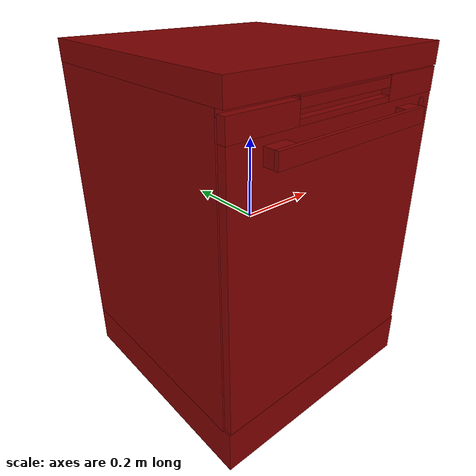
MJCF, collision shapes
<?xml version='1.0' encoding='UTF-8'?>
<mujoco model="model">
  <option timestep="0.002" gravity="0.0 0.0 -9.81"/>
  <compiler angle="radian"/>
  <asset>
    <mesh file="visuals/button_power.obj" name="button_power_vis"/>
    <mesh file="visuals/Body001.obj" name="Body001_vis"/>
    <mesh file="visuals/door.obj" name="door_vis"/>
    <mesh file="visuals/rack0.obj" name="rack0_vis"/>
    <mesh file="visuals/rack1.obj" name="rack1_vis"/>
    <texture file="visuals/T_BC001.png" name="Body001_material" type="2d"/>
    <material name="Body001_material" rgba="1 1 1 1.0" texture="Body001_material" shininess="0.1472135901451111" specular="8"/>
    <texture file="visuals/T_BC001.png" name="door_material" type="2d"/>
    <material name="door_material" rgba="1 1 1 1.0" texture="door_material" shininess="0.3472135901451111" specular="2"/>
    <texture file="visuals/T_BC001.png" name="button_power_material" type="2d"/>
    <material name="button_power_material" rgba="1 1 1 1.0" texture="button_power_material" shininess="0.4472135901451111" specular="0.3103448502657381"/>
    <texture file="visuals/T_BC001.png" name="rack0_material" type="2d"/>
    <material name="rack0_material" rgba="1 1 1 1.0" texture="rack0_material" shininess="0.3472135901451111" specular="5"/>
    <texture file="visuals/T_BC001.png" name="rack1_material" type="2d"/>
    <material name="rack1_material" rgba="1 1 1 1.0" texture="rack1_material" shininess="0.3472135901451111" specular="5"/>
  </asset>
  <default>
    <default class="visual">
      <geom conaffinity="0" contype="0" group="1" type="mesh"/>
    </default>
    <default class="collision">
      <geom group="0" rgba="0.5 0 0 0.5"/>
    </default>
    <default class="spawn">
      <geom group="0" rgba="1 1 1 0.5" contype="0" conaffinity="0"/>
      <site group="0" rgba="1 1 1 0.5"/>
    </default>
    <default class="region">
      <geom group="1" conaffinity="0" contype="0" rgba="0 1 0 0"/>
    </default>
  </default>
  <worldbody>
    <body>
      <body name="object">
        <geom mesh="Body001_vis" type="mesh" solimp="0.998 0.998 0.001" solref="0.001 1" friction="0.95 0.3 0.1" class="visual" material="Body001_material"/>
        <geom class="collision" type="box" pos="0.0001495313481427729 0.017466677352786064 -0.36134880781173706" size="0.2910770773887634 0.2833539545536041 0.052461180835962296" quat="1.0 0.0 0.0 0.0"/>
        <geom class="collision" type="box" pos="-6.28642737865448e-09 0.01746588945388794 0.3891109824180603" size="0.29122665524482727 0.28335314989089966 0.024697640910744667" quat="1.0 0.0 0.0 0.0"/>
        <geom class="collision" type="box" pos="-0.2648942768573761 0.027671895921230316 0.025932788848876953" size="0.026033295318484306 0.2731485366821289 0.34079235792160034" quat="1.0 0.0 0.0 0.0"/>
        <geom class="collision" type="box" pos="0.26625052094459534 0.027664760127663612 0.025932788848876953" size="0.024662407115101814 0.2731557786464691 0.34079235792160034" quat="1.0 0.0 0.0 0.0"/>
        <geom class="collision" type="box" pos="-0.00014079082757234573 0.25822558999061584 0.027698397636413574" size="0.24205000698566437 0.04259497672319412 0.34251588582992554" quat="1.0 0.0 0.0 0.0"/>
        <geom class="collision" type="box" pos="-0.00014079082757234573 0.03440956026315689 -0.29409754276275635" size="0.24205000698566437 0.26475465297698975 0.02071993425488472" quat="1.0 0.0 0.0 0.0"/>
        <geom class="collision" type="box" pos="0.00045153876999393106 0.026828864589333534 0.3574134111404419" size="0.29011669754981995 0.27233532071113586 0.008320099674165249" quat="1.0 0.0 0.0 0.0"/>
        <geom class="collision" type="box" pos="-0.24220186471939087 -0.019005123525857925 -0.07020049542188644" size="0.016158204525709152 0.18635593354701996 0.007848302833735943" quat="1.0 0.0 0.0 0.0"/>
        <geom class="collision" type="box" pos="0.23929882049560547 -0.019005123525857925 -0.07020049542188644" size="0.016158204525709152 0.18635593354701996 0.007848302833735943" quat="1.0 0.0 0.0 0.0"/>
        <geom class="collision" type="box" pos="0.23929882049560547 -0.019005123525857925 0.19328488409519196" size="0.016158204525709152 0.18635593354701996 0.007848302833735943" quat="1.0 0.0 0.0 0.0"/>
        <geom class="collision" type="box" pos="-0.24220186471939087 -0.019005123525857925 0.19328488409519196" size="0.016158204525709152 0.18635593354701996 0.007848302833735943" quat="1.0 0.0 0.0 0.0"/>
        <body name="door">
          <joint axis="1.0 0.0 0.0" pos="-0.000558888481464237 -0.26588406693190336 -0.30744928028434515" limited="true" name="door_joint" range="0.0 0.6035987755982988" type="hinge" damping="1" frictionloss="10" armature="1" stiffness="2"/>
          <geom mesh="door_vis" type="mesh" solimp="0.998 0.998 0.001" solref="0.001 1" friction="0.95 0.3 0.1" class="visual" material="door_material"/>
          <geom class="collision" type="box" pos="0.0003033773973584175 -0.25598931312561035 0.36041367053985596" size="0.1296575516462326 0.009703303687274456 0.001561103155836463" quat="1.0 0.0 0.0 0.0"/>
          <geom class="collision" type="box" pos="-0.20830126106739044 -0.2560849189758301 0.3324427604675293" size="0.07969097793102264 0.009798895567655563 0.022729039192199707" quat="1.0 0.0 0.0 0.0"/>
          <geom class="collision" type="box" pos="0.20913349092006683 -0.2560851275920868 0.3360663652420044" size="0.07947086542844772 0.009799112565815449 0.026352658867836" quat="1.0 0.0 0.0 0.0"/>
          <geom class="collision" type="box" pos="0.0003033773973584175 -0.264178603887558 0.35019779205322266" size="0.1296575516462326 0.0008578085107728839 0.011400402523577213" quat="1.0 0.0 0.0 0.0"/>
          <geom class="collision" type="box" pos="0.0003033773973584175 -0.25598931312561035 0.29594576358795166" size="0.1296575516462326 0.009703303687274456 0.026352658867836" quat="1.0 0.0 0.0 0.0"/>
          <geom class="collision" type="box" pos="0.0003033773973584175 -0.24555207788944244 0.3404597043991089" size="0.1296575516462326 0.001297959010116756 0.02113850601017475" quat="1.0 0.0 0.0 0.0"/>
          <geom class="collision" type="box" pos="0.18475297093391418 -0.2775583267211914 0.2771376371383667" size="0.025461390614509583 0.013577926903963089 0.017236430197954178" quat="1.0 0.0 0.0 0.0"/>
          <geom class="collision" type="box" pos="-0.18563787639141083 -0.2775583267211914 0.2771376371383667" size="0.025461390614509583 0.013577926903963089 0.017236430197954178" quat="1.0 0.0 0.0 0.0"/>
          <geom class="collision" type="box" pos="-0.00017510750330984592 -0.29599279165267944 0.2771376371383667" size="0.2109241485595703 0.004919996950775385 0.017236430197954178" quat="1.0 0.0 0.0 0.0" name="door_handle_main"/>
          <geom class="collision" type="box" pos="-0.000558888481464237 -0.25608503818511963 0.0011709639802575111" size="0.28743332624435425 0.009799028746783733 0.30862024426460266" quat="1.0 0.0 0.0 0.0" name="door_main"/>
          <body name="button_power">
            <joint axis="0.0 1.0 0.0" pos="0.24902299046516418 -0.267831951379776 0.29334667325019836" limited="true" name="button_power_joint" range="0.0 0.003" type="slide" damping="1" frictionloss="1" armature=".01" stiffness="4" springref="-1"/>
            <geom mesh="button_power_vis" type="mesh" solimp="0.998 0.998 0.001" solref="0.001 1" friction="0.95 0.3 0.1" class="visual" material="button_power_material"/>
            <geom class="collision" type="cylinder" pos="0.24904164671897888 -0.26895877718925476 0.29333949089050293" size="0.009062596596777439 0.001358578447252512" quat="0.7071067094802856 0.70710688829422 0.0 0.0"/>
          </body>
        </body>
        <body name="rack0">
          <geom class="region" name="reg_rack0" type="box" pos="-0.0009538978338241577 -0.030650310218334198 0.09350907790940255" size="0.21192884242534638 0.1516560668349266 0.09273941623885185"/>
          <joint axis="0.0 -1.0 0.0" pos="-0.0012442677980288863 -0.030350230634212494 -0.007744709961116314" limited="true" name="rack0_joint" range="0.0 0.182" type="slide" damping="1" frictionloss="1" armature=".01" stiffness="0.05"/>
          <geom mesh="rack0_vis" type="mesh" solimp="0.998 0.998 0.001" solref="0.001 1" friction="0.95 0.3 0.1" class="visual" material="rack0_material"/>
          <geom class="collision" type="box" pos="-0.20387303829193115 -0.03031572699546814 -0.05844490975141525" size="0.028610870242118835 0.1739332675933838 0.002080196049064398" quat="1.0 0.0 0.0 0.0"/>
          <geom class="collision" type="box" pos="-0.000733064254745841 0.14454737305641174 -0.017419179901480675" size="0.22167141735553741 0.0020802852232009172 0.05752143636345863" quat="1.0 0.0 0.0 0.0"/>
          <geom class="collision" type="box" pos="-0.000733064254745841 -0.20494940876960754 -0.017419179901480675" size="0.22167141735553741 0.0025122754741460085 0.05752143636345863" quat="1.0 0.0 0.0 0.0"/>
          <geom class="collision" type="box" pos="0.23039132356643677 -0.031747251749038696 -0.010090993717312813" size="0.0025122377555817366 0.1759839951992035 0.05019324645400047" quat="1.0 0.0 0.0 0.0"/>
          <geom class="collision" type="box" pos="-0.2339985966682434 -0.031747251749038696 -0.010072441771626472" size="0.0019362475723028183 0.1759839951992035 0.05017470195889473" quat="1.0 0.0 0.0 0.0"/>
          <geom class="collision" type="box" pos="0.20648029446601868 -0.03031572699546814 -0.05844490975141525" size="0.024869512766599655 0.1739334762096405 0.0020801990758627653" quat="1.0 0.0 0.0 0.0"/>
          <geom class="collision" type="box" pos="0.10795211791992188 -0.03031572699546814 -0.07180703431367874" size="0.012249854393303394 0.1739335060119629 0.0020801995415240526" quat="1.0 0.0 0.0 0.0"/>
          <geom class="collision" type="box" pos="0.05079188570380211 -0.03031572699546814 -0.07180703431367874" size="0.012249858118593693 0.17393355071544647 0.0020802002400159836" quat="1.0 0.0 0.0 0.0"/>
          <geom class="collision" type="box" pos="-0.04682591184973717 -0.03031572699546814 -0.07180703431367874" size="0.012249862775206566 0.17393359541893005 0.0020802009385079145" quat="1.0 0.0 0.0 0.0"/>
          <geom class="collision" type="box" pos="-0.10250146687030792 -0.03031572699546814 -0.07217820733785629" size="0.012249866500496864 0.17393364012241364 0.002080201404169202" quat="1.0 0.0 0.0 0.0"/>
          <geom class="collision" type="box" pos="-0.11884207278490067 -0.03031572699546814 -0.04106365889310837" size="0.03250827267765999 0.17393484711647034 0.002080218866467476" quat="0.7633305191993713 0.0 0.6460081338882446 0.0"/>
          <geom class="collision" type="box" pos="-0.16015519201755524 -0.03031572699546814 -0.034070901572704315" size="0.04203127697110176 0.17393484711647034 0.004355958197265863" quat="0.9576954245567322 0.0 -0.28778377175331116 0.0"/>
          <geom class="collision" type="box" pos="0.025574348866939545 -0.03031572699546814 -0.05001357942819595" size="0.02700870670378208 0.17393484711647034 0.002080218866467476" quat="0.8822809457778931 0.0 0.4707231819629669 0.0"/>
          <geom class="collision" type="box" pos="0.16136229038238525 -0.03031572699546814 -0.03352620452642441" size="0.04005209356546402 0.17393484711647034 0.005054346285760403" quat="0.9604085683822632 0.0 0.27859532833099365 0.0"/>
          <geom class="collision" type="box" pos="0.12303287535905838 -0.03031572699546814 -0.04414505511522293" size="0.02700870670378208 0.17393484711647034 0.002080218866467476" quat="0.6370745897293091 0.0 0.7708021998405457 0.0"/>
          <geom class="collision" type="box" pos="0.06444068998098373 -0.03031572699546814 -0.061334408819675446" size="0.011668791994452477 0.17393484711647034 0.002080219332128763" quat="0.5749940276145935 0.0 0.8181576132774353 0.0"/>
          <geom class="collision" type="box" pos="0.09315495193004608 -0.03031572699546814 -0.061334408819675446" size="0.011668792925775051 0.17393484711647034 0.002080219332128763" quat="0.8316628932952881 0.0 0.555280864238739 0.0"/>
          <geom class="collision" type="box" pos="0.07761693000793457 -0.03031572699546814 -0.052757419645786285" size="0.011677335947751999 0.17393368482589722 0.0021293112076818943" quat="1.0 0.0 0.0 0.0"/>
          <geom class="collision" type="box" pos="-0.08995586633682251 -0.03031572699546814 -0.061334408819675446" size="0.011668791994452477 0.17393484711647034 0.002080219332128763" quat="0.5749940276145935 0.0 0.8181576132774353 0.0"/>
          <geom class="collision" type="box" pos="-0.061241600662469864 -0.03031572699546814 -0.061334408819675446" size="0.011668792925775051 0.17393484711647034 0.002080219332128763" quat="0.8316628932952881 0.0 0.555280864238739 0.0"/>
          <geom class="collision" type="box" pos="-0.07677961885929108 -0.03031572699546814 -0.052757419645786285" size="0.011677340604364872 0.1739337146282196 0.0021293116733431816" quat="1.0 0.0 0.0 0.0"/>
          <geom class="collision" type="box" pos="-0.0206620916724205 -0.03031572699546814 -0.04990265518426895" size="0.027008702978491783 0.17393484711647034 0.002080218866467476" quat="0.45507773756980896 0.0 0.8904517292976379 0.0"/>
          <geom class="collision" type="box" pos="0.0022229545284062624 -0.03031572699546814 -0.029774075374007225" size="0.01167734432965517 0.17393375933170319 0.0021293123718351126" quat="1.0 0.0 0.0 0.0"/>
          <geom class="collision" type="box" pos="0.055367693305015564 -0.03031572699546814 -0.03829815238714218" size="0.03453165665268898 0.17393484711647034 0.0020802190992981195" quat="0.662051260471344 0.0 0.7494585514068604 0.0"/>
          <geom class="collision" type="box" pos="-0.10281521826982498 -0.03031572699546814 -0.03829815238714218" size="0.0023748204112052917 0.17393380403518677 0.03454791009426117" quat="1.0 0.0 0.0 0.0"/>
          <geom class="collision" type="box" pos="0.19915583729743958 -0.03031572699546814 0.0086114052683115" size="0.03517039492726326 0.17393484711647034 0.0020802184008061886" quat="0.9728460311889648 0.0 0.23145335912704468 0.0"/>
        </body>
        <body name="rack1">
          <geom class="region" name="reg_rack1" type="box" pos="-0.0009538978338241577 -0.030650310218334198 0.30418574810028076" size="0.21192884242534638 0.1516560668349266 0.042143983602523805"/>
          <joint axis="0.0 -1.0 0.0" pos="-0.0012442677980288863 -0.030350230634212494 0.25557246804237366" limited="true" name="rack1_joint" range="0.0 0.33399999999999996" type="slide" damping="1" frictionloss="1" armature=".01" stiffness="0.05"/>
          <geom mesh="rack1_vis" type="mesh" solimp="0.998 0.998 0.001" solref="0.001 1" friction="0.95 0.3 0.1" class="visual" material="rack1_material"/>
          <geom class="collision" type="box" pos="-0.20387303829193115 -0.03031572699546814 0.204872265458107" size="0.02861098200082779 0.17393384873867035 0.0020802044309675694" quat="1.0 0.0 0.0 0.0"/>
          <geom class="collision" type="box" pos="-0.0017913149204105139 0.14454737305641174 0.24589799344539642" size="0.22154821455478668 0.0020802852232009172 0.05752143636345863" quat="1.0 0.0 0.0 0.0"/>
          <geom class="collision" type="box" pos="-0.0017913149204105139 -0.20494940876960754 0.24589799344539642" size="0.22154821455478668 0.0025122754741460085 0.05752143636345863" quat="1.0 0.0 0.0 0.0"/>
          <geom class="collision" type="box" pos="0.22662444412708282 -0.031747251749038696 0.2533515989780426" size="0.0062791104428470135 0.1759839951992035 0.05006783455610275" quat="1.0 0.0 0.0 0.0"/>
          <geom class="collision" type="box" pos="-0.2339985966682434 -0.031747251749038696 0.25293242931365967" size="0.0019362475723028183 0.1759839951992035 0.05048699676990509" quat="1.0 0.0 0.0 0.0"/>
          <geom class="collision" type="box" pos="0.20648029446601868 -0.03031572699546814 0.204872265458107" size="0.02486962452530861 0.17393405735492706 0.002080207457765937" quat="1.0 0.0 0.0 0.0"/>
          <geom class="collision" type="box" pos="0.10795211791992188 -0.03031572699546814 0.1915101408958435" size="0.012249910272657871 0.17393408715724945 0.002080208156257868" quat="1.0 0.0 0.0 0.0"/>
          <geom class="collision" type="box" pos="0.05079188570380211 -0.03031572699546814 0.1915101408958435" size="0.01224991399794817 0.17393413186073303 0.002080208621919155" quat="1.0 0.0 0.0 0.0"/>
          <geom class="collision" type="box" pos="-0.04682591184973717 -0.03031572699546814 0.1915101408958435" size="0.012249917723238468 0.1739341765642166 0.002080209320411086" quat="1.0 0.0 0.0 0.0"/>
          <geom class="collision" type="box" pos="-0.10250146687030792 -0.03031572699546814 0.19113896787166595" size="0.012249921448528767 0.1739342212677002 0.0020802097860723734" quat="1.0 0.0 0.0 0.0"/>
          <geom class="collision" type="box" pos="-0.11884207278490067 -0.03031572699546814 0.22225351631641388" size="0.03250827267765999 0.17393484711647034 0.002080218866467476" quat="0.7633305191993713 0.0 0.6460081338882446 0.0"/>
          <geom class="collision" type="box" pos="-0.16015519201755524 -0.03031572699546814 0.22924627363681793" size="0.04203127697110176 0.17393484711647034 0.004355958197265863" quat="0.9576954245567322 0.0 -0.28778377175331116 0.0"/>
          <geom class="collision" type="box" pos="0.025574348866939545 -0.03031572699546814 0.2133035957813263" size="0.02700870670378208 0.17393484711647034 0.002080218866467476" quat="0.8822809457778931 0.0 0.4707231819629669 0.0"/>
          <geom class="collision" type="box" pos="0.16136229038238525 -0.03031572699546814 0.22979097068309784" size="0.04005209356546402 0.17393484711647034 0.005054346285760403" quat="0.9604085683822632 0.0 0.27859532833099365 0.0"/>
          <geom class="collision" type="box" pos="0.12303287535905838 -0.03031572699546814 0.21917212009429932" size="0.02700870670378208 0.17393484711647034 0.002080218866467476" quat="0.6370745897293091 0.0 0.7708021998405457 0.0"/>
          <geom class="collision" type="box" pos="0.06444068998098373 -0.03031572699546814 0.2019827663898468" size="0.011668791994452477 0.17393484711647034 0.002080219332128763" quat="0.5749940276145935 0.0 0.8181576132774353 0.0"/>
          <geom class="collision" type="box" pos="0.09315495193004608 -0.03031572699546814 0.2019827663898468" size="0.011668792925775051 0.17393484711647034 0.002080219332128763" quat="0.8316628932952881 0.0 0.555280864238739 0.0"/>
          <geom class="collision" type="box" pos="0.07761693000793457 -0.03031572699546814 0.21055975556373596" size="0.011677391827106476 0.17393426597118378 0.002129319589585066" quat="1.0 0.0 0.0 0.0"/>
          <geom class="collision" type="box" pos="-0.08995586633682251 -0.03031572699546814 0.2019827663898468" size="0.011668791994452477 0.17393484711647034 0.002080219332128763" quat="0.5749940276145935 0.0 0.8181576132774353 0.0"/>
          <geom class="collision" type="box" pos="-0.061241600662469864 -0.03031572699546814 0.2019827663898468" size="0.011668792925775051 0.17393484711647034 0.002080219332128763" quat="0.8316628932952881 0.0 0.555280864238739 0.0"/>
          <geom class="collision" type="box" pos="-0.07677961885929108 -0.03031572699546814 0.21055975556373596" size="0.011677395552396774 0.17393429577350616 0.002129320288076997" quat="1.0 0.0 0.0 0.0"/>
          <geom class="collision" type="box" pos="-0.0206620916724205 -0.03031572699546814 0.2134145200252533" size="0.027008702978491783 0.17393484711647034 0.002080218866467476" quat="0.45507773756980896 0.0 0.8904517292976379 0.0"/>
          <geom class="collision" type="box" pos="0.0022229545284062624 -0.03031572699546814 0.23354309797286987" size="0.011677399277687073 0.17393434047698975 0.002129320753738284" quat="1.0 0.0 0.0 0.0"/>
          <geom class="collision" type="box" pos="0.055367693305015564 -0.03031572699546814 0.22501902282238007" size="0.03453165665268898 0.17393484711647034 0.0020802190992981195" quat="0.662051260471344 0.0 0.7494585514068604 0.0"/>
          <geom class="collision" type="box" pos="-0.10281521826982498 -0.03031572699546814 0.22501902282238007" size="0.0023748273961246014 0.17393438518047333 0.034548044204711914" quat="1.0 0.0 0.0 0.0"/>
          <geom class="collision" type="box" pos="0.19915583729743958 -0.03031572699546814 0.2719285786151886" size="0.03517039492726326 0.17393484711647034 0.0020802184008061886" quat="0.9728460311889648 0.0 0.23145335912704468 0.0"/>
        </body>
        <geom class="region" name="reg_int" type="box" pos="0.0010249689221382141 -0.011045977473258972 0.026405349373817444" size="0.23389795964956284 0.22008484399318695 0.293624369263649"/>
        <geom class="region" name="reg_main" type="box" pos="7.450580596923828e-09 0.017466723918914795 0.0" size="0.29222671484947205 0.2843539843559265 0.4148098955154419"/>
      </body>
    </body>
  </worldbody>
  <actuator>
    <motor name="door_joint_actuator" joint="door_joint" gear="50"/>
    <motor name="rack0_joint_actuator" joint="rack0_joint" gear="50"/>
    <motor name="rack1_joint_actuator" joint="rack1_joint" gear="50"/>
    <motor name="button_power_joint_actuator" joint="button_power_joint" gear="0.5"/>
  </actuator>
</mujoco>
